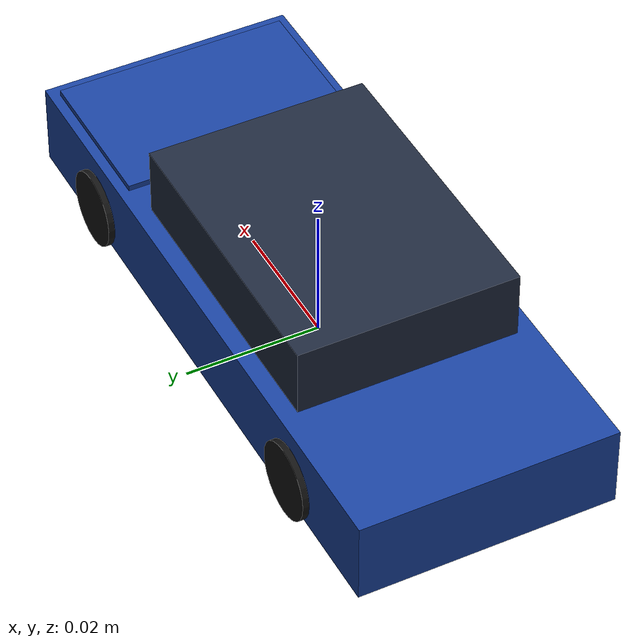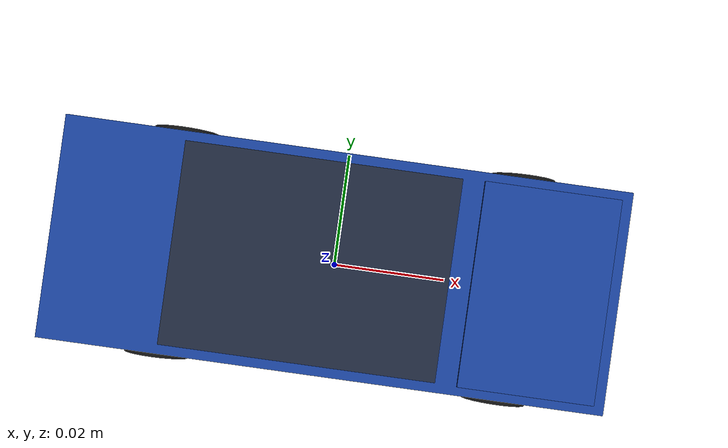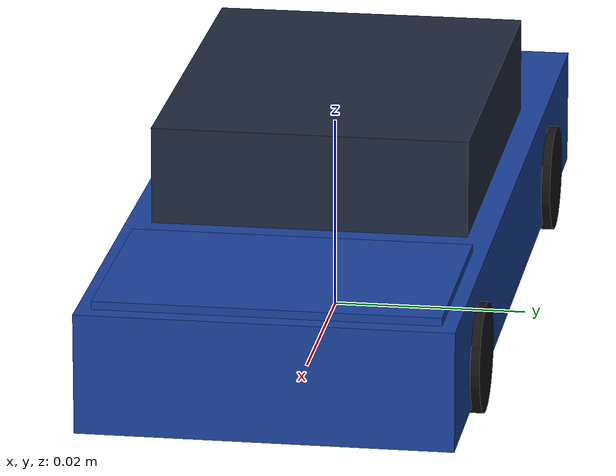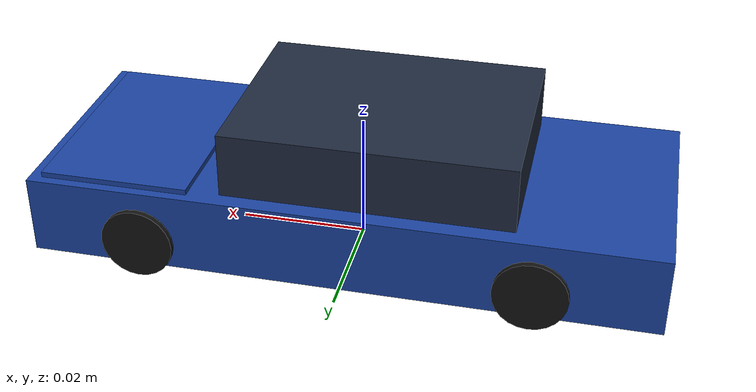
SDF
<?xml version="1.0"?>
<sdf version="1.6">
  <model name="sedan_car">
    <static>true</static>
    <link name="body">
      <visual name="lower">
        <pose>0 0 0.00784 0 0 0</pose>
        <geometry><box><size>0.09616 0.03778 0.01232</size></box></geometry>
        <material><ambient>0.05 0.12 0.28 1</ambient><diffuse>0.10 0.26 0.62 1</diffuse>
          <specular>0.95 0.95 1.0 96</specular></material>
      </visual>
      <visual name="cabin">
        <pose>-0.00385 0 0.01904 0 0 0</pose>
        <geometry><box><size>0.04423 0.03249 0.01008</size></box></geometry>
        <material><ambient>0.06 0.08 0.12 1</ambient><diffuse>0.12 0.16 0.24 1</diffuse>
          <specular>0.9 0.95 1.0 110</specular></material>
      </visual>
      <visual name="hood">
        <pose>0.03462 0 0.014 0 0 0</pose>
        <geometry><box><size>0.02308 0.03475 0.00168</size></box></geometry>
        <material><ambient>0.05 0.12 0.28 1</ambient><diffuse>0.10 0.26 0.62 1</diffuse>
          <specular>0.95 0.95 1.0 96</specular></material>
      </visual>
      <visual name="headlight_l">
        <pose>0.04683 0.01133 0.00952 0 1.5708 0</pose>
        <geometry><cylinder><radius>0.00196</radius><length>0.00192</length></cylinder></geometry>
        <material><ambient>0.9 0.9 0.8 1</ambient><diffuse>1.0 1.0 0.9 1</diffuse><emissive>0.35 0.35 0.3 1</emissive></material>
      </visual>
      <visual name="headlight_r">
        <pose>0.04683 -0.01133 0.00952 0 1.5708 0</pose>
        <geometry><cylinder><radius>0.00196</radius><length>0.00192</length></cylinder></geometry>
        <material><ambient>0.9 0.9 0.8 1</ambient><diffuse>1.0 1.0 0.9 1</diffuse><emissive>0.35 0.35 0.3 1</emissive></material>
      </visual>
      <visual name="taillight">
        <pose>-0.04731 0 0.0112 0 0 0</pose>
        <geometry><box><size>0.00115 0.03022 0.0014</size></box></geometry>
        <material><ambient>0.5 0.03 0.03 1</ambient><diffuse>0.9 0.06 0.06 1</diffuse><emissive>0.4 0.02 0.02 1</emissive></material>
      </visual>
      <collision name="col">
        <pose>0 0 0.0112 0 0 0</pose>
        <geometry><box><size>0.09616 0.03778 0.0224</size></box></geometry>
      </collision>
    </link>
    <link name="wheels">
      <visual name="fl"><pose>0.03077 0.01813 0.0056 1.5708 0 0</pose>
        <geometry><cylinder><radius>0.0056</radius><length>0.0034</length></cylinder></geometry>
        <material><ambient>0.02 0.02 0.02 1</ambient><diffuse>0.07 0.07 0.07 1</diffuse></material></visual>
      <visual name="fr"><pose>0.03077 -0.01813 0.0056 1.5708 0 0</pose>
        <geometry><cylinder><radius>0.0056</radius><length>0.0034</length></cylinder></geometry>
        <material><ambient>0.02 0.02 0.02 1</ambient><diffuse>0.07 0.07 0.07 1</diffuse></material></visual>
      <visual name="rl"><pose>-0.02885 0.01813 0.0056 1.5708 0 0</pose>
        <geometry><cylinder><radius>0.0056</radius><length>0.0034</length></cylinder></geometry>
        <material><ambient>0.02 0.02 0.02 1</ambient><diffuse>0.07 0.07 0.07 1</diffuse></material></visual>
      <visual name="rr"><pose>-0.02885 -0.01813 0.0056 1.5708 0 0</pose>
        <geometry><cylinder><radius>0.0056</radius><length>0.0034</length></cylinder></geometry>
        <material><ambient>0.02 0.02 0.02 1</ambient><diffuse>0.07 0.07 0.07 1</diffuse></material></visual>
    </link>
  </model>
</sdf>
